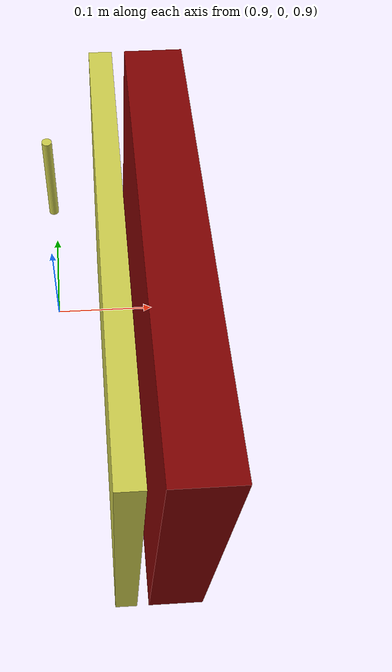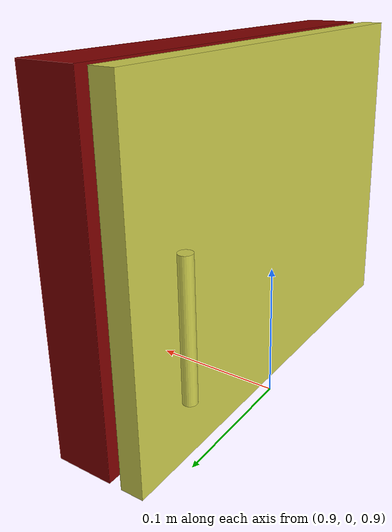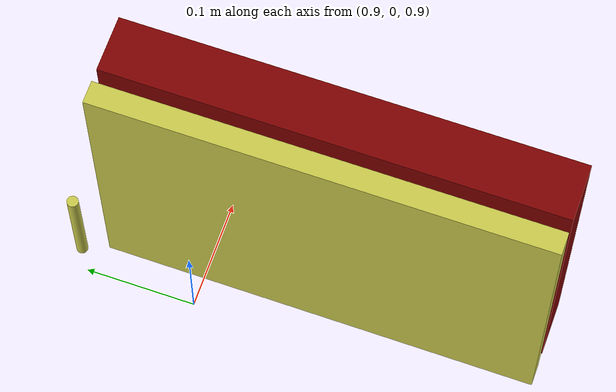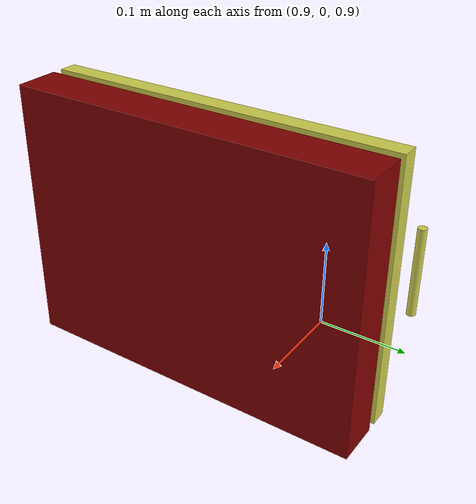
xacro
<?xml version="1.0" ?>
<robot name="microwave"  xmlns:xacro="http://www.ros.org/wiki/xacro" >

    <xacro:arg name="height" default="0.0"/>
    <xacro:arg name="origin_x" default="1.0"/>
    <xacro:arg name="prefix" default=""/>
    <xacro:arg name="articulation_mismatch_offset" default="0.0"/>

    <xacro:property name="height" default="$(arg height)"/>
    <xacro:property name="origin_x" default="$(arg origin_x)"/>
    <xacro:property name="prefix" default="$(arg prefix)"/>
    <xacro:property name="articulation_mismatch_offset" default="$(arg articulation_mismatch_offset)"/>

    <link name="world"/>
    <joint name="fixed" type="fixed">
        <parent link="world"/>
        <child link="${prefix}door_frame"/>
        <origin xyz="${origin_x} -0.3 1.0" rpy="1.57 0 3.14"/> <!-- ${height + 0.3} -->
    </joint>

    <link name="${prefix}door_frame">
        <visual>
            <origin rpy="0 0 0" xyz="0 0 0.2"/>
            <geometry>
                <box size="0.05 0.3 0.4"/>
            </geometry>
            <material name="frame_material">
                <color rgba="0.5 0.0 0.0 1"/>
            </material>
        </visual>
        <collision>
            <origin rpy="0 0 0" xyz="0 0 0.2"/>
            <geometry>
                <box size="0.05 0.3 0.4"/>
            </geometry>
        </collision>
    </link>

    <link name="${prefix}door_link">
        <inertial>
            <origin rpy="0 0 0" xyz="0 0 0.2"/>
            <mass value="1.0"/>
            <inertia ixx="0.048966669" ixy="0" ixz="0" iyy="0.046466667" iyz="0" izz="0.0041666669"/>
        </inertial>
        <visual>
            <origin rpy="0 0 0" xyz="0 0 0.2"/>
            <geometry>
                <box size="0.02 0.3 0.4"/>
            </geometry>
            <material name="door_material">
                <color rgba="0.8 0.8 0.3 1"/>
            </material>
        </visual>
        <collision>
            <origin rpy="0 0 0" xyz="0 0 0.2"/>
            <geometry>
                <box size="0.02 0.3 0.4"/>
            </geometry>
        </collision>
    </link>

    <joint name="articulation_joint" type="revolute">
        <parent link="${prefix}door_frame"/>
        <child link="${prefix}door_link"/>
        <dynamics damping="1.0" friction="4.0"/>
        <origin xyz="0.046 0 0"/>
        <axis xyz="0 1 0"/>
        <limit effort="100" lower="0" upper="1.57" velocity="10.0"/>
    </joint>

    <link name="${prefix}handle_link">
        <inertial>
            <origin rpy="0 0 0" xyz="0 0 0"/>
            <mass value="0.1"/>
            <inertia ixx="0.001" ixy="0" ixz="0" iyy="0.001" iyz="0" izz="0.001"/>
        </inertial>
        <visual>
            <origin rpy="0 0 0" xyz="0 0 0"/>
            <geometry>
                <cylinder radius="0.005" length="0.10"/>
            </geometry>
            <material name="handle_matreial">
                <color rgba="0.8 0.8 0.3 1"/>
            </material>
        </visual>
        <collision>
            <origin rpy="0 0 0" xyz="0 0 0"/>
            <geometry>
                <cylinder radius="0.005" length="0.10"/>
            </geometry>
            <material name="">
                <contact name="steel"/>
            </material>
        </collision>
    </link>

    <joint name="${prefix}handle_joint" type="fixed">
        <parent link="${prefix}door_link"/>
        <child link="${prefix}handle_link"/>
        <origin xyz="0.055 0 0.4" rpy="1.5708 0 0"/>
        <dynamics damping="1.0" friction="2.0"/>
        <axis xyz="0 1 0"/>
    </joint>
</robot>
